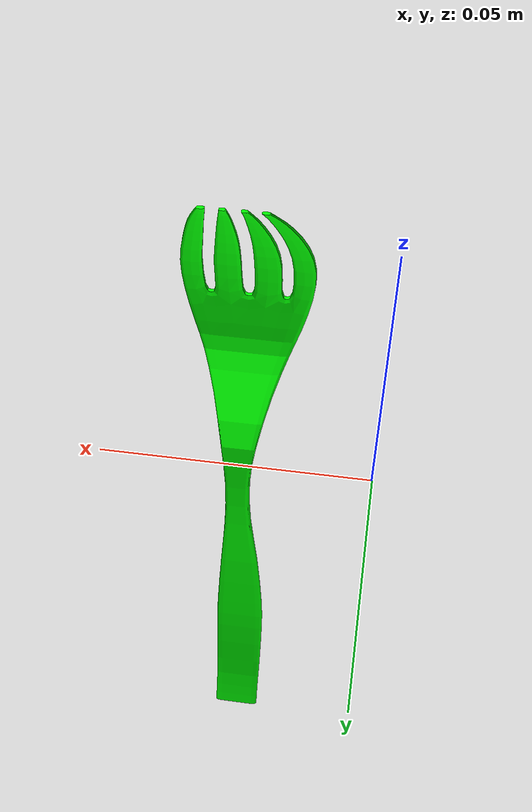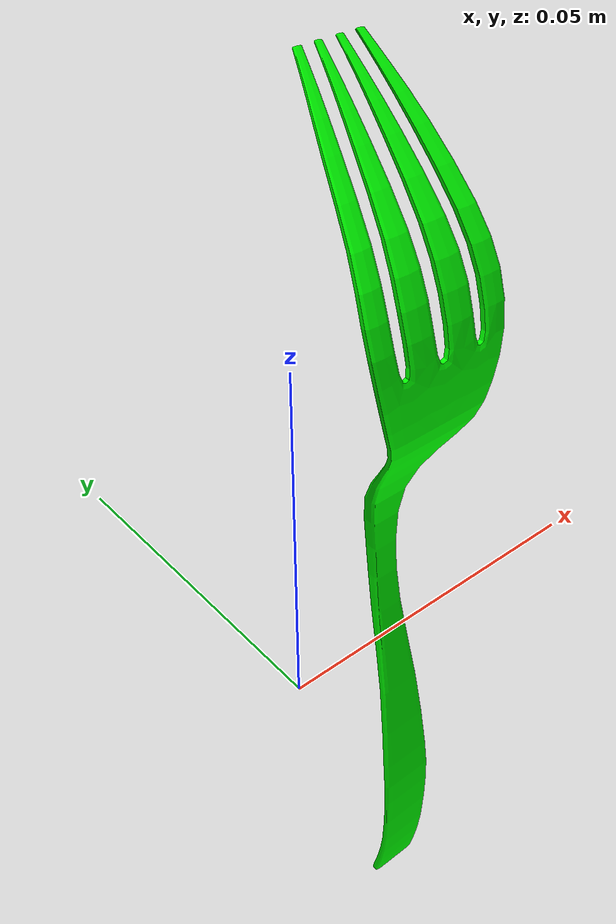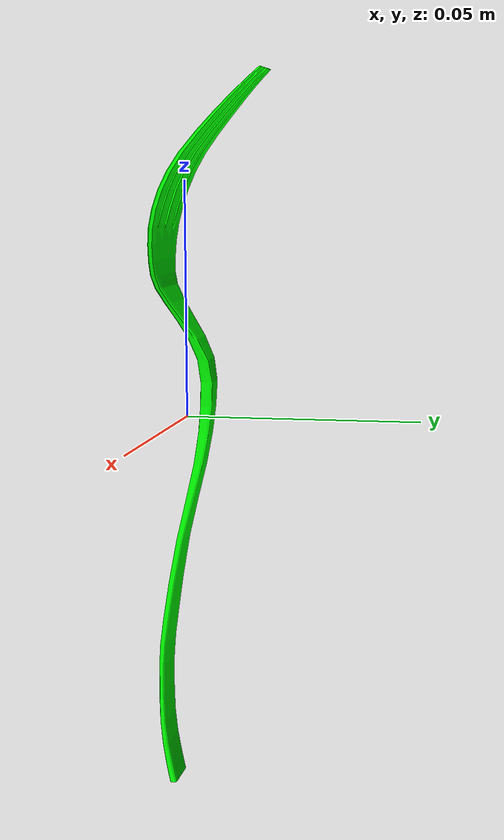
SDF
<?xml version="1.0" ?>
<sdf version="1.6">
  <model name="utensil_fork_green">
    <static>false</static>
    <link name="link">
    <inertial>
      <!-- Volume:  1.8095690000e-06 -->
      <mass> 0.1 </mass>
      <!-- Center of mass:  2.3183510000e-02  4.4729200000e-03  5.6142700000e-03 -->
      <pose>  2.3183510000e-02  4.4729200000e-03  5.6142700000e-03 0 0 0 </pose>
      <!-- Inertia matrix -->
      <inertia>
        <ixx>  1.6129562896e-04 </ixx>
        <ixy>  1.6578533341e-11 </ixy>
        <ixz>  3.3157066683e-10 </ixz>
        <iyy>  1.6129487187e-04 </iyy>
        <iyz> -5.8036858501e-06 </iyz>
        <izz>  2.9862912108e-06 </izz>
      </inertia>
    </inertial>
      <visual name="visual">
        <geometry>
          <mesh>
            <scale>1 1 1</scale>
            <uri>model://utensil_fork_green/meshes/fork.dae</uri>
          </mesh>
        </geometry>
        <material>
          <lighting>1</lighting>
          <ambient>0.0 1.0 0.0</ambient>
          <diffuse>0.0 1.0 0.0</diffuse>
          <specular>0.0 1.0 0.0</specular>
          <emissive>0 0 0 1</emissive>
          <shader type='vertex'>
            <normal_map>__default__</normal_map>
          </shader>
        </material>
      </visual>
      <collision name='collision'>
        <laser_retro>0</laser_retro>
        <max_contacts>10</max_contacts>
        <pose frame=''>0 0 0 0 0 0</pose>
        <geometry>
          <mesh>
            <uri>model://utensil_fork_green/meshes/fork.dae</uri>
            <scale>1 1 1</scale>
          </mesh>
        </geometry>
      </collision>
    </link>
  </model>
</sdf>
